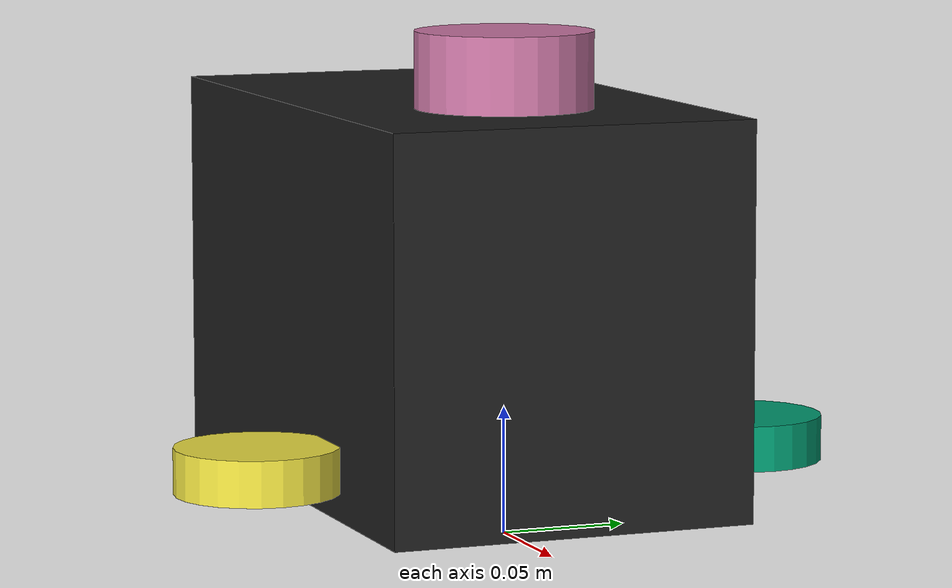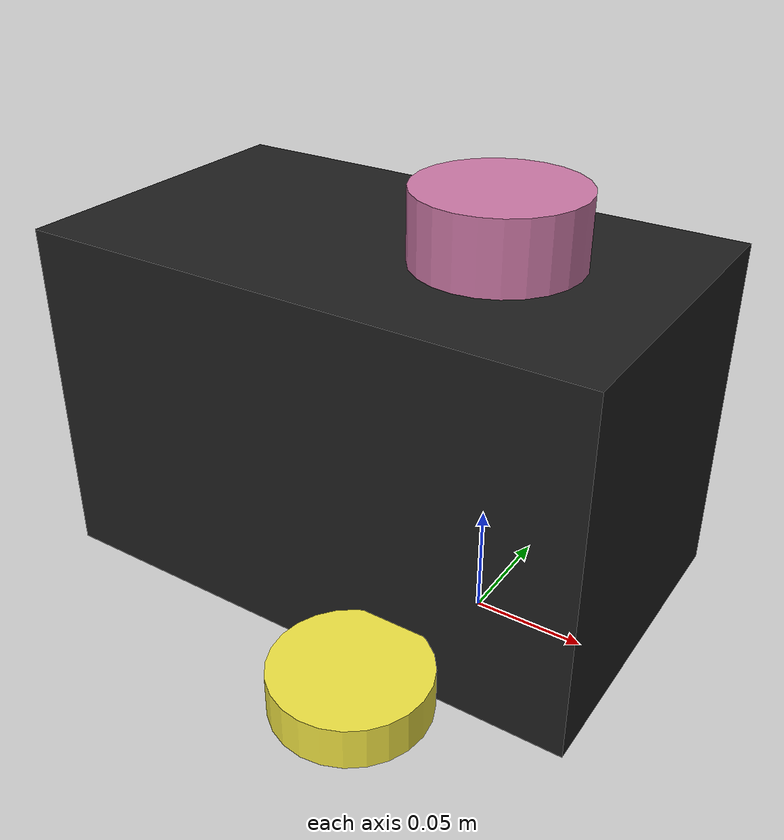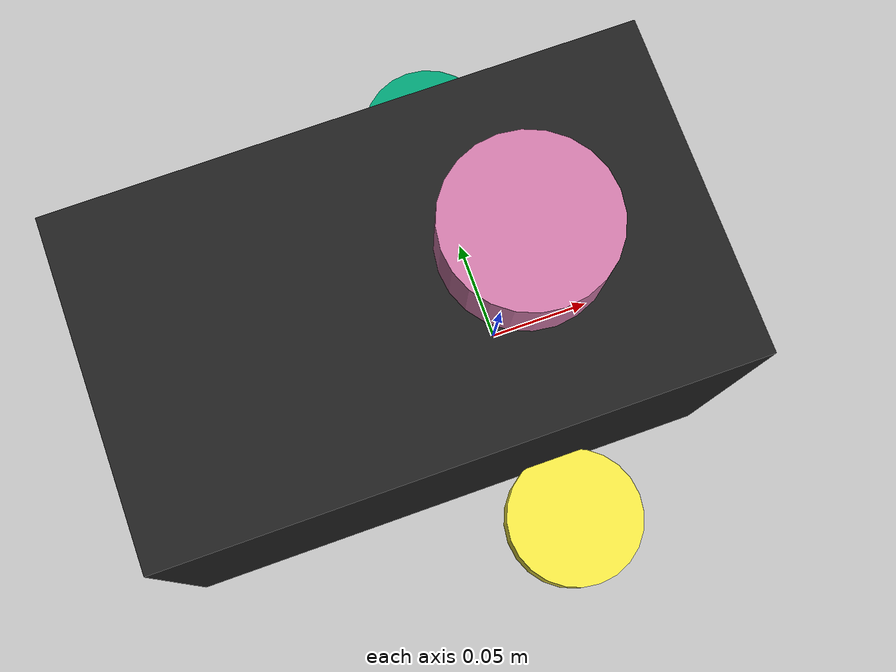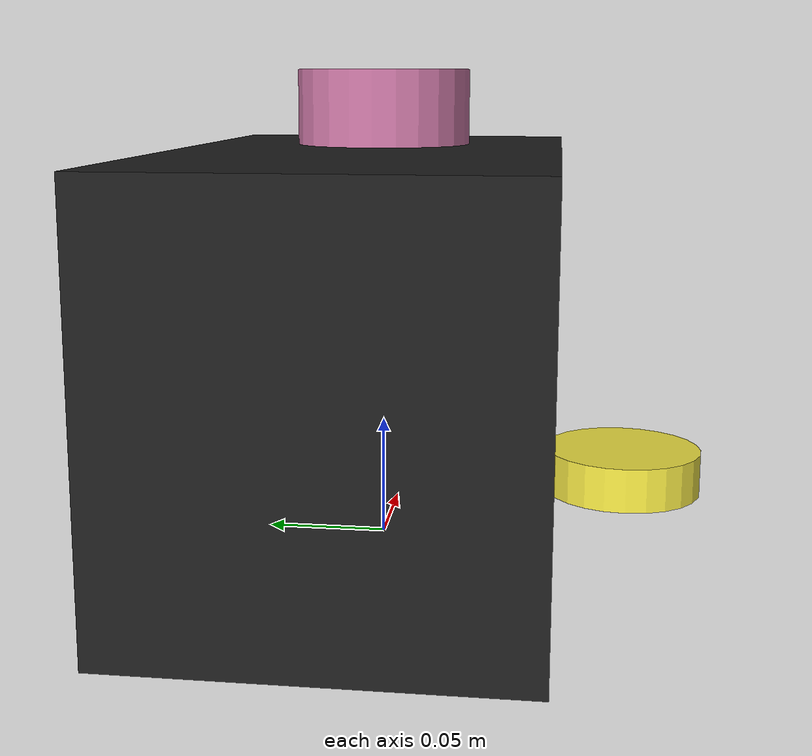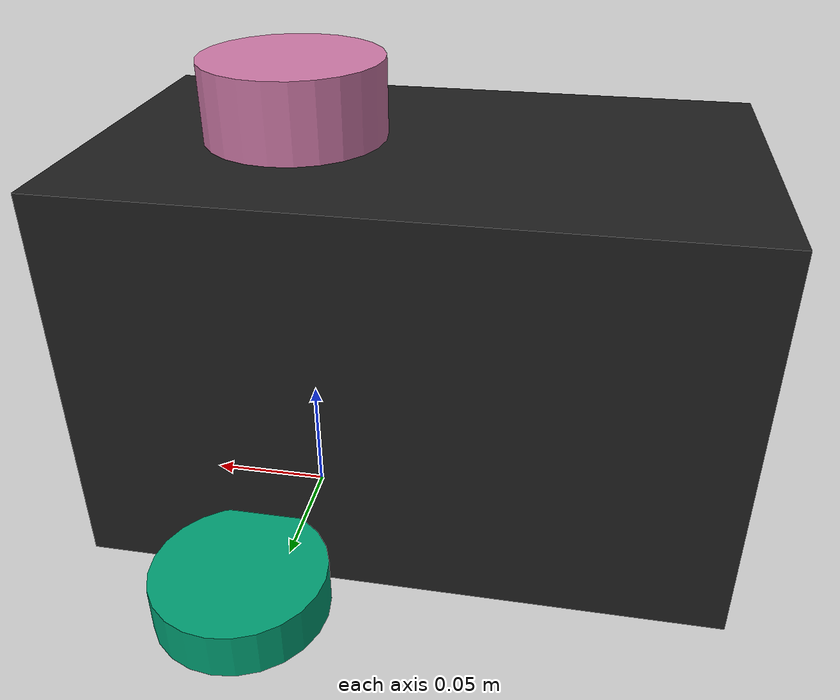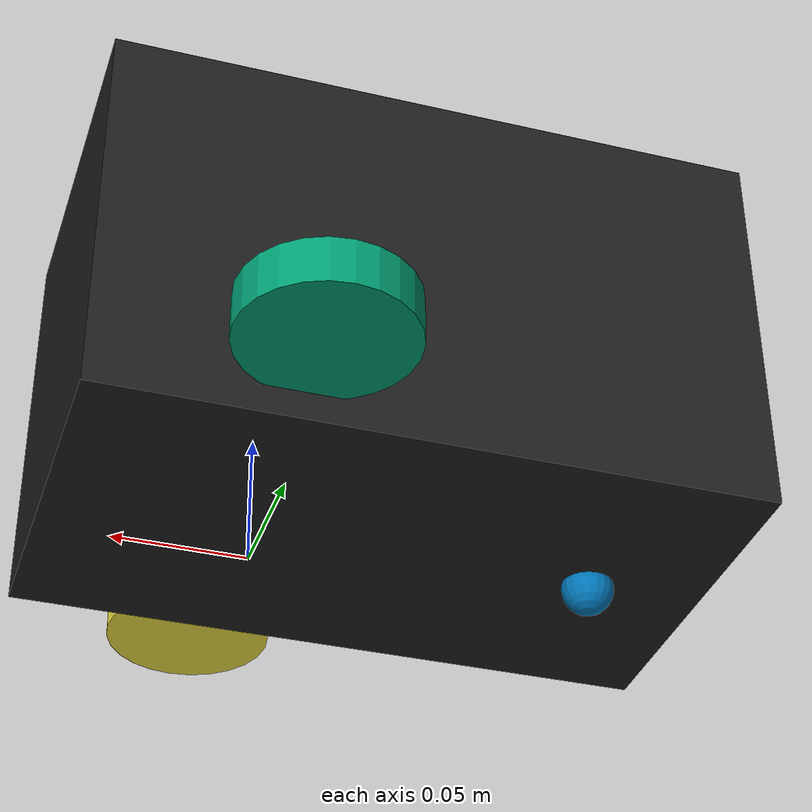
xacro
<?xml version="1.0" ?>
<robot name="my_robot" xmlns:xacro="http://ros.org/wiki/xacro">
  <xacro:include filename="$(find robot_description)/urdf/common_properties.xacro"/>

  <xacro:property name="wheel_radius"     value="0.03208"/>
  <xacro:property name="wheel_width"      value="0.018"/>
  <xacro:property name="wheel_separation" value="0.2025"/>
  <xacro:property name="wheel_y"          value="${wheel_separation / 2}"/>

  <link name="base_footprint"/>

  <joint name="base_joint" type="fixed">
    <parent link="base_footprint"/>
    <child link="base_link"/>
    <origin xyz="0 0 ${wheel_radius}" rpy="0 0 0"/>
  </joint>

  <link name="base_link">
    <visual>
      <origin xyz="-0.05 0 0.0575" rpy="0 0 0"/>
      <geometry>
        <box size="0.25 0.145 0.155"/>
      </geometry>
      <material name="light_black"/>
    </visual>
  </link>

  <joint name="wheel_left_joint" type="continuous">
    <parent link="base_link"/>
    <child link="wheel_left_link"/>
    <origin xyz="0 ${wheel_y} 0" rpy="-1.5707963 0 0"/>
    <axis xyz="0 0 1"/>
  </joint>

  <link name="wheel_left_link">
    <visual>
      <origin xyz="0 0 0" rpy="1.5707963 0 0"/>
      <geometry>
        <cylinder length="${wheel_width}" radius="${wheel_radius}"/>
      </geometry>
      <material name="dark"/>
    </visual>
  </link>

  <joint name="wheel_right_joint" type="continuous">
    <parent link="base_link"/>
    <child link="wheel_right_link"/>
    <origin xyz="0 ${-wheel_y} 0" rpy="-1.5707963 0 0"/>
    <axis xyz="0 0 1"/>
  </joint>

  <link name="wheel_right_link">
    <visual>
      <origin xyz="0 0 0" rpy="1.5707963 0 0"/>
      <geometry>
        <cylinder length="${wheel_width}" radius="${wheel_radius}"/>
      </geometry>
      <material name="dark"/>
    </visual>
  </link>

  <joint name="caster_wheel_joint" type="fixed">
    <parent link="base_link"/>
    <child link="caster_wheel_link"/>
    <origin xyz="-0.13 0 -0.022" rpy="0 0 0"/>
  </joint>

  <link name="caster_wheel_link">
    <visual>
      <origin xyz="0 0 0" rpy="0 0 0"/>
      <geometry>
        <sphere radius="0.01"/>
      </geometry>
      <material name="dark"/>
    </visual>
  </link>

  <joint name="imu_joint" type="fixed">
    <parent link="base_link"/>
    <child link="imu_link"/>
    <origin xyz="-0.017 0.05 0.07" rpy="0 0 0"/>
  </joint>

  <link name="imu_link"/>

  <joint name="scan_joint" type="fixed">
    <parent link="base_link"/>
    <child link="base_scan"/>
    <origin xyz="0 0 0.145" rpy="0 0 3.14159"/>
  </joint>

  <link name="base_scan">
    <visual>
      <origin xyz="0 0 0" rpy="0 0 0"/>
      <geometry>
        <cylinder length="0.040" radius="0.035"/>
      </geometry>
      <material name="dark"/>
    </visual>
  </link>

</robot>
